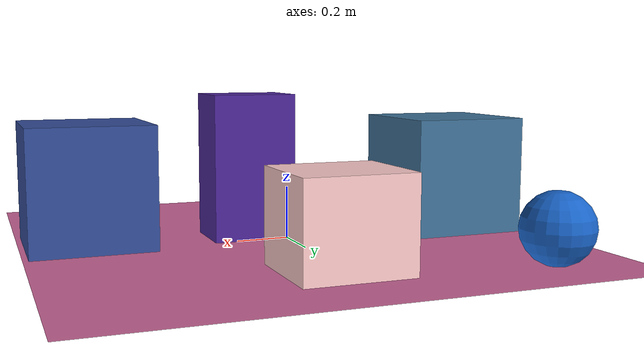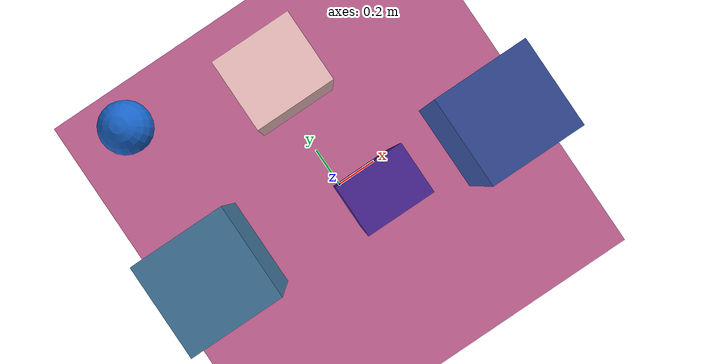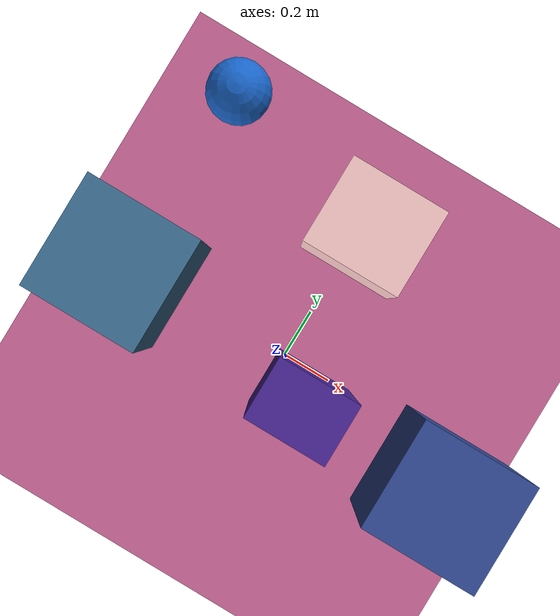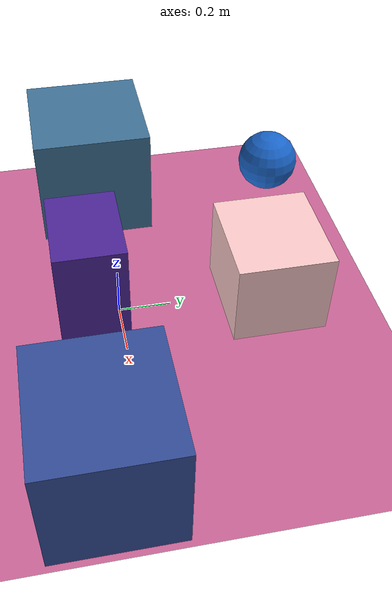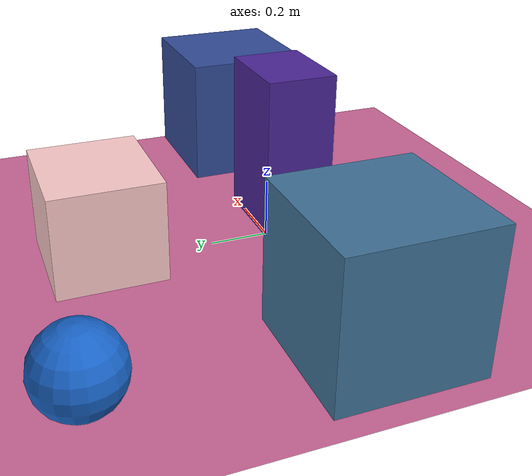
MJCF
<mujoco>
   <asset>
<texture type="skybox" builtin="gradient" rgb1="1.0 0.4 0.4" rgb2="0.8 1.0 0.6" width="256" height="256"/>
<texture name="checker_0" builtin="checker" type="2d" rgb1="0.1 0.1 0.6" rgb2="0.3 0.5 0.6" width="200" height="200"/>
<texture name="gradient_1" builtin="gradient" rgb1="0.0 0.3 0.6" rgb2="0.2 0.5 1.0" width="200" height="200"/>
<texture name="gradient_2" builtin="gradient" rgb1="0.1 0.3 0.7" rgb2="0.5 0.0 0.5" width="200" height="200"/>
<texture name="checker_3" builtin="checker" type="2d" rgb1="0.2 0.5 0.4" rgb2="0.3 0.4 0.8" width="200" height="200"/>
<texture name="flat_4" builtin="flat" rgb1="1.0 0.8 0.8" rgb2="1.0 0.8 0.8"  width="200" height="200"/><material name="checker_0_mat" reflectance="0" texrepeat="5 5" texture="checker_0" texuniform="false" />
<material name="gradient_1_mat" reflectance="0" texture="gradient_1" texuniform="true"/>
<material name="gradient_2_mat" reflectance="0" texture="gradient_2" texuniform="true"/>
<material name="checker_3_mat" reflectance="0" texrepeat="3 3" texture="checker_3" texuniform="false" />
<material name="flat_4_mat" reflectance="0" texture="flat_4" texuniform="true"/>
   </asset>

   <worldbody>
      <light diffuse=".9 .9 .9" pos="0 0 3" dir="0 0 -1"/>
     <geom type="plane" size="1 1 0.1" rgba="0.8 0.4 0.6 1"/>
<geom type="box" pos="0.75 -0.14 0.23" size="0.23 0.22 0.23" material="checker_0_mat" />
<geom type="sphere" pos="-0.68 0.78 0.13" size="0.13 0.13 0.13" material="gradient_1_mat" />
<geom type="box" pos="0.13 -0.11 0.28" size="0.16 0.12 0.28" material="gradient_2_mat" />
<geom type="box" pos="-0.7 -0.02 0.23" size="0.23 0.23 0.23" material="checker_3_mat" />
<geom type="box" pos="0.03 0.58 0.17" size="0.2 0.18 0.17" material="flat_4_mat" /><camera euler="60 0 180" fovy="60" name="camera_a" pos="0 -1.5 1"></camera>   </worldbody>
</mujoco>
